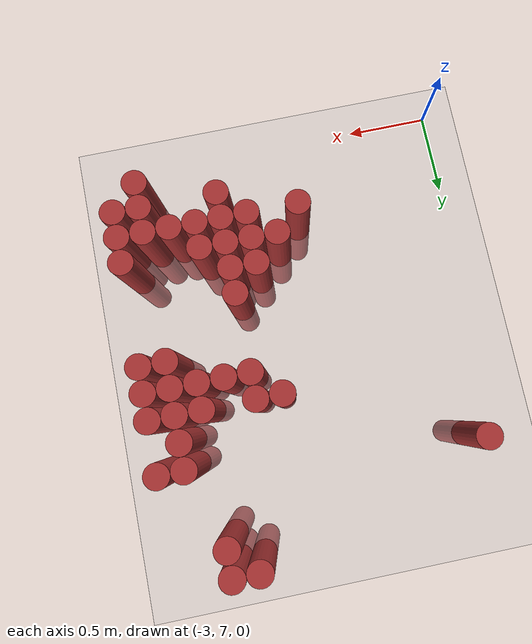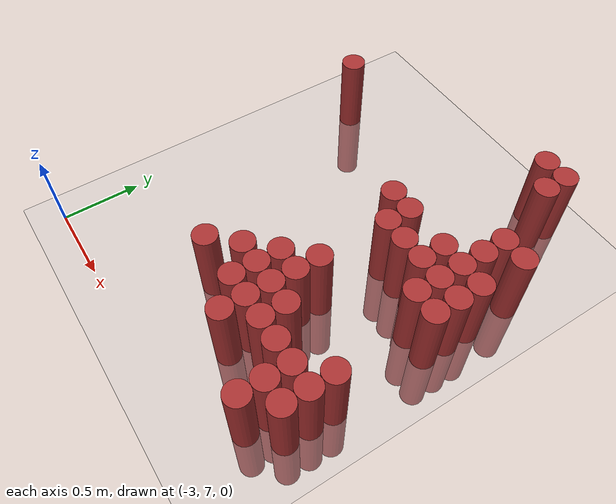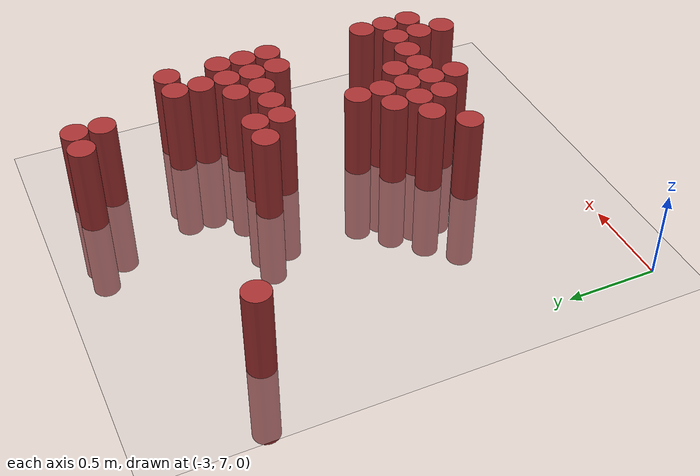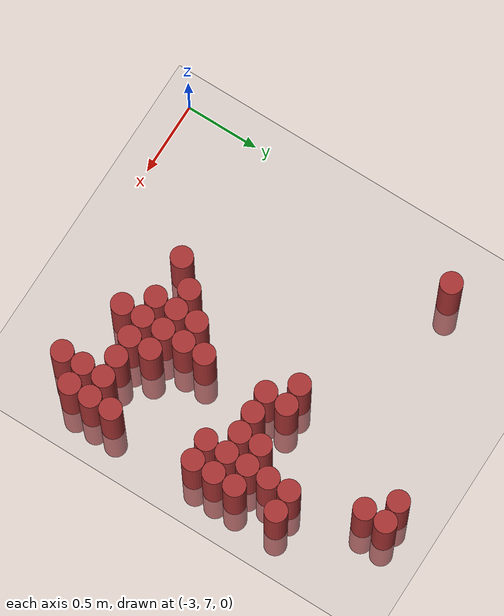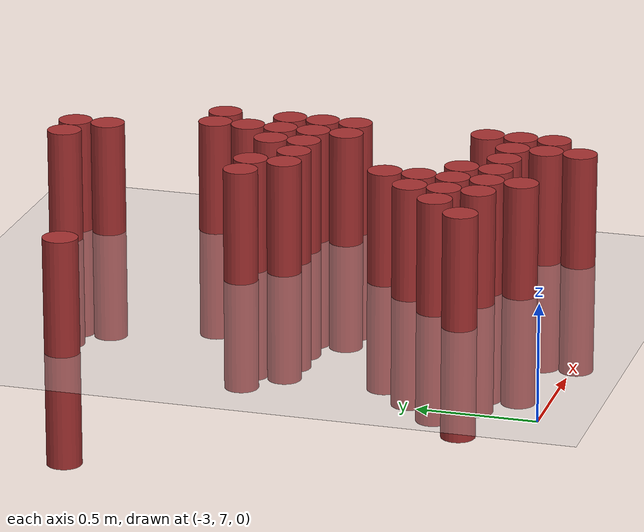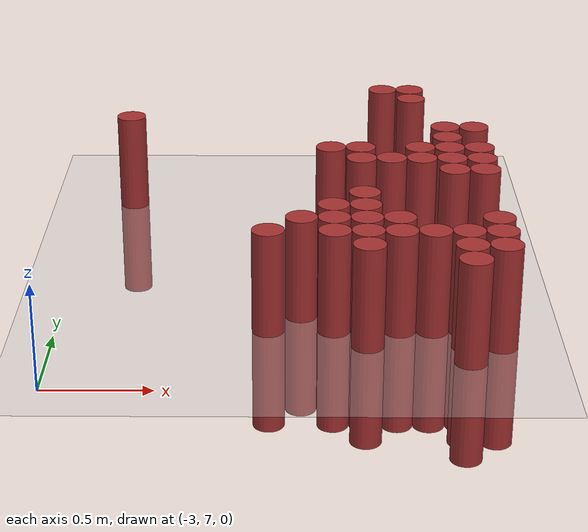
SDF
<sdf version="1.6">
 <world name="default">
  <model name="ground_plane">
   <static>1</static>
   <link name="link">
    <collision name="collision">
     <geometry><plane><normal>0 0 1</normal><size>100 100</size></plane></geometry>
     <surface><friction><ode><mu>100</mu><mu2>50</mu2></ode></friction></surface>
    </collision>
    <visual name="visual">
     <cast_shadows>0</cast_shadows>
     <geometry><plane><normal>0 0 1</normal><size>100 100</size></plane></geometry>
     <material>
      <script><uri>file://media/materials/scripts/gazebo.material</uri><name>Gazebo/Grey</name></script>
     </material>
    </visual>
   </link>
  </model>
  <model name="unit_cylinder_201">
   <static>1</static>
   <pose>-2.775000 9.075000 0.000000 0.000000 0.000000 0.000000</pose>
   <link name="link">
    <inertial>
     <mass>1</mass>
     <inertia><ixx>0.145833</ixx><ixy>0</ixy><ixz>0</ixz><iyy>0.145833</iyy><iyz>0</iyz><izz>0.125</izz></inertia>
    </inertial>
    <collision name="collision">
     <geometry><cylinder><radius>0.075000</radius><length>1</length></cylinder></geometry>
    </collision>
    <visual name="visual">
     <geometry><cylinder><radius>0.075000</radius><length>1</length></cylinder></geometry>
     <material>
      <ambient>0.648000 0.192000 0.192000 1</ambient>
      <diffuse>0.648000 0.192000 0.192000 1</diffuse>
     </material>
     <material>
      <script><name>Gazebo/Grey</name><uri>file://media/materials/scripts/gazebo.material</uri></script>
     </material>
    </visual>
    <sensor name="sensor_contact" type="contact"><contact><collision>collision</collision></contact></sensor>
   </link>
   <plugin filename="gz-sim-touchplugin-system" name="gz::sim::systems::TouchPlugin">
    <target>robot</target>
    <namespace>robot</namespace>
    <time>0.001</time>
    <enabled>true</enabled>
   </plugin>
  </model>
  <model name="unit_cylinder_211">
   <static>1</static>
   <pose>-2.025000 7.575000 0.000000 0.000000 0.000000 0.000000</pose>
   <link name="link">
    <inertial>
     <mass>1</mass>
     <inertia><ixx>0.145833</ixx><ixy>0</ixy><ixz>0</ixz><iyy>0.145833</iyy><iyz>0</iyz><izz>0.125</izz></inertia>
    </inertial>
    <collision name="collision">
     <geometry><cylinder><radius>0.075000</radius><length>1</length></cylinder></geometry>
    </collision>
    <visual name="visual">
     <geometry><cylinder><radius>0.075000</radius><length>1</length></cylinder></geometry>
     <material>
      <ambient>0.648000 0.192000 0.192000 1</ambient>
      <diffuse>0.648000 0.192000 0.192000 1</diffuse>
     </material>
     <material>
      <script><name>Gazebo/Grey</name><uri>file://media/materials/scripts/gazebo.material</uri></script>
     </material>
    </visual>
    <sensor name="sensor_contact" type="contact"><contact><collision>collision</collision></contact></sensor>
   </link>
   <plugin filename="gz-sim-touchplugin-system" name="gz::sim::systems::TouchPlugin">
    <target>robot</target>
    <namespace>robot</namespace>
    <time>0.001</time>
    <enabled>true</enabled>
   </plugin>
  </model>
  <model name="unit_cylinder_214">
   <static>1</static>
   <pose>-1.875000 7.725000 0.000000 0.000000 0.000000 0.000000</pose>
   <link name="link">
    <inertial>
     <mass>1</mass>
     <inertia><ixx>0.145833</ixx><ixy>0</ixy><ixz>0</ixz><iyy>0.145833</iyy><iyz>0</iyz><izz>0.125</izz></inertia>
    </inertial>
    <collision name="collision">
     <geometry><cylinder><radius>0.075000</radius><length>1</length></cylinder></geometry>
    </collision>
    <visual name="visual">
     <geometry><cylinder><radius>0.075000</radius><length>1</length></cylinder></geometry>
     <material>
      <ambient>0.648000 0.192000 0.192000 1</ambient>
      <diffuse>0.648000 0.192000 0.192000 1</diffuse>
     </material>
     <material>
      <script><name>Gazebo/Grey</name><uri>file://media/materials/scripts/gazebo.material</uri></script>
     </material>
    </visual>
    <sensor name="sensor_contact" type="contact"><contact><collision>collision</collision></contact></sensor>
   </link>
   <plugin filename="gz-sim-touchplugin-system" name="gz::sim::systems::TouchPlugin">
    <target>robot</target>
    <namespace>robot</namespace>
    <time>0.001</time>
    <enabled>true</enabled>
   </plugin>
  </model>
  <model name="unit_cylinder_217">
   <static>1</static>
   <pose>-1.725000 7.575000 0.000000 0.000000 0.000000 0.000000</pose>
   <link name="link">
    <inertial>
     <mass>1</mass>
     <inertia><ixx>0.145833</ixx><ixy>0</ixy><ixz>0</ixz><iyy>0.145833</iyy><iyz>0</iyz><izz>0.125</izz></inertia>
    </inertial>
    <collision name="collision">
     <geometry><cylinder><radius>0.075000</radius><length>1</length></cylinder></geometry>
    </collision>
    <visual name="visual">
     <geometry><cylinder><radius>0.075000</radius><length>1</length></cylinder></geometry>
     <material>
      <ambient>0.648000 0.192000 0.192000 1</ambient>
      <diffuse>0.648000 0.192000 0.192000 1</diffuse>
     </material>
     <material>
      <script><name>Gazebo/Grey</name><uri>file://media/materials/scripts/gazebo.material</uri></script>
     </material>
    </visual>
    <sensor name="sensor_contact" type="contact"><contact><collision>collision</collision></contact></sensor>
   </link>
   <plugin filename="gz-sim-touchplugin-system" name="gz::sim::systems::TouchPlugin">
    <target>robot</target>
    <namespace>robot</namespace>
    <time>0.001</time>
    <enabled>true</enabled>
   </plugin>
  </model>
  <model name="unit_cylinder_218">
   <static>1</static>
   <pose>-1.725000 7.725000 0.000000 0.000000 0.000000 0.000000</pose>
   <link name="link">
    <inertial>
     <mass>1</mass>
     <inertia><ixx>0.145833</ixx><ixy>0</ixy><ixz>0</ixz><iyy>0.145833</iyy><iyz>0</iyz><izz>0.125</izz></inertia>
    </inertial>
    <collision name="collision">
     <geometry><cylinder><radius>0.075000</radius><length>1</length></cylinder></geometry>
    </collision>
    <visual name="visual">
     <geometry><cylinder><radius>0.075000</radius><length>1</length></cylinder></geometry>
     <material>
      <ambient>0.648000 0.192000 0.192000 1</ambient>
      <diffuse>0.648000 0.192000 0.192000 1</diffuse>
     </material>
     <material>
      <script><name>Gazebo/Grey</name><uri>file://media/materials/scripts/gazebo.material</uri></script>
     </material>
    </visual>
    <sensor name="sensor_contact" type="contact"><contact><collision>collision</collision></contact></sensor>
   </link>
   <plugin filename="gz-sim-touchplugin-system" name="gz::sim::systems::TouchPlugin">
    <target>robot</target>
    <namespace>robot</namespace>
    <time>0.001</time>
    <enabled>true</enabled>
   </plugin>
  </model>
  <model name="unit_cylinder_219">
   <static>1</static>
   <pose>-1.725000 7.875000 0.000000 0.000000 0.000000 0.000000</pose>
   <link name="link">
    <inertial>
     <mass>1</mass>
     <inertia><ixx>0.145833</ixx><ixy>0</ixy><ixz>0</ixz><iyy>0.145833</iyy><iyz>0</iyz><izz>0.125</izz></inertia>
    </inertial>
    <collision name="collision">
     <geometry><cylinder><radius>0.075000</radius><length>1</length></cylinder></geometry>
    </collision>
    <visual name="visual">
     <geometry><cylinder><radius>0.075000</radius><length>1</length></cylinder></geometry>
     <material>
      <ambient>0.648000 0.192000 0.192000 1</ambient>
      <diffuse>0.648000 0.192000 0.192000 1</diffuse>
     </material>
     <material>
      <script><name>Gazebo/Grey</name><uri>file://media/materials/scripts/gazebo.material</uri></script>
     </material>
    </visual>
    <sensor name="sensor_contact" type="contact"><contact><collision>collision</collision></contact></sensor>
   </link>
   <plugin filename="gz-sim-touchplugin-system" name="gz::sim::systems::TouchPlugin">
    <target>robot</target>
    <namespace>robot</namespace>
    <time>0.001</time>
    <enabled>true</enabled>
   </plugin>
  </model>
  <model name="unit_cylinder_220">
   <static>1</static>
   <pose>-1.725000 8.625000 0.000000 0.000000 0.000000 0.000000</pose>
   <link name="link">
    <inertial>
     <mass>1</mass>
     <inertia><ixx>0.145833</ixx><ixy>0</ixy><ixz>0</ixz><iyy>0.145833</iyy><iyz>0</iyz><izz>0.125</izz></inertia>
    </inertial>
    <collision name="collision">
     <geometry><cylinder><radius>0.075000</radius><length>1</length></cylinder></geometry>
    </collision>
    <visual name="visual">
     <geometry><cylinder><radius>0.075000</radius><length>1</length></cylinder></geometry>
     <material>
      <ambient>0.648000 0.192000 0.192000 1</ambient>
      <diffuse>0.648000 0.192000 0.192000 1</diffuse>
     </material>
     <material>
      <script><name>Gazebo/Grey</name><uri>file://media/materials/scripts/gazebo.material</uri></script>
     </material>
    </visual>
    <sensor name="sensor_contact" type="contact"><contact><collision>collision</collision></contact></sensor>
   </link>
   <plugin filename="gz-sim-touchplugin-system" name="gz::sim::systems::TouchPlugin">
    <target>robot</target>
    <namespace>robot</namespace>
    <time>0.001</time>
    <enabled>true</enabled>
   </plugin>
  </model>
  <model name="unit_cylinder_225">
   <static>1</static>
   <pose>-1.575000 7.425000 0.000000 0.000000 0.000000 0.000000</pose>
   <link name="link">
    <inertial>
     <mass>1</mass>
     <inertia><ixx>0.145833</ixx><ixy>0</ixy><ixz>0</ixz><iyy>0.145833</iyy><iyz>0</iyz><izz>0.125</izz></inertia>
    </inertial>
    <collision name="collision">
     <geometry><cylinder><radius>0.075000</radius><length>1</length></cylinder></geometry>
    </collision>
    <visual name="visual">
     <geometry><cylinder><radius>0.075000</radius><length>1</length></cylinder></geometry>
     <material>
      <ambient>0.648000 0.192000 0.192000 1</ambient>
      <diffuse>0.648000 0.192000 0.192000 1</diffuse>
     </material>
     <material>
      <script><name>Gazebo/Grey</name><uri>file://media/materials/scripts/gazebo.material</uri></script>
     </material>
    </visual>
    <sensor name="sensor_contact" type="contact"><contact><collision>collision</collision></contact></sensor>
   </link>
   <plugin filename="gz-sim-touchplugin-system" name="gz::sim::systems::TouchPlugin">
    <target>robot</target>
    <namespace>robot</namespace>
    <time>0.001</time>
    <enabled>true</enabled>
   </plugin>
  </model>
  <model name="unit_cylinder_226">
   <static>1</static>
   <pose>-1.575000 7.575000 0.000000 0.000000 0.000000 0.000000</pose>
   <link name="link">
    <inertial>
     <mass>1</mass>
     <inertia><ixx>0.145833</ixx><ixy>0</ixy><ixz>0</ixz><iyy>0.145833</iyy><iyz>0</iyz><izz>0.125</izz></inertia>
    </inertial>
    <collision name="collision">
     <geometry><cylinder><radius>0.075000</radius><length>1</length></cylinder></geometry>
    </collision>
    <visual name="visual">
     <geometry><cylinder><radius>0.075000</radius><length>1</length></cylinder></geometry>
     <material>
      <ambient>0.648000 0.192000 0.192000 1</ambient>
      <diffuse>0.648000 0.192000 0.192000 1</diffuse>
     </material>
     <material>
      <script><name>Gazebo/Grey</name><uri>file://media/materials/scripts/gazebo.material</uri></script>
     </material>
    </visual>
    <sensor name="sensor_contact" type="contact"><contact><collision>collision</collision></contact></sensor>
   </link>
   <plugin filename="gz-sim-touchplugin-system" name="gz::sim::systems::TouchPlugin">
    <target>robot</target>
    <namespace>robot</namespace>
    <time>0.001</time>
    <enabled>true</enabled>
   </plugin>
  </model>
  <model name="unit_cylinder_227">
   <static>1</static>
   <pose>-1.575000 7.725000 0.000000 0.000000 0.000000 0.000000</pose>
   <link name="link">
    <inertial>
     <mass>1</mass>
     <inertia><ixx>0.145833</ixx><ixy>0</ixy><ixz>0</ixz><iyy>0.145833</iyy><iyz>0</iyz><izz>0.125</izz></inertia>
    </inertial>
    <collision name="collision">
     <geometry><cylinder><radius>0.075000</radius><length>1</length></cylinder></geometry>
    </collision>
    <visual name="visual">
     <geometry><cylinder><radius>0.075000</radius><length>1</length></cylinder></geometry>
     <material>
      <ambient>0.648000 0.192000 0.192000 1</ambient>
      <diffuse>0.648000 0.192000 0.192000 1</diffuse>
     </material>
     <material>
      <script><name>Gazebo/Grey</name><uri>file://media/materials/scripts/gazebo.material</uri></script>
     </material>
    </visual>
    <sensor name="sensor_contact" type="contact"><contact><collision>collision</collision></contact></sensor>
   </link>
   <plugin filename="gz-sim-touchplugin-system" name="gz::sim::systems::TouchPlugin">
    <target>robot</target>
    <namespace>robot</namespace>
    <time>0.001</time>
    <enabled>true</enabled>
   </plugin>
  </model>
  <model name="unit_cylinder_228">
   <static>1</static>
   <pose>-1.575000 7.875000 0.000000 0.000000 0.000000 0.000000</pose>
   <link name="link">
    <inertial>
     <mass>1</mass>
     <inertia><ixx>0.145833</ixx><ixy>0</ixy><ixz>0</ixz><iyy>0.145833</iyy><iyz>0</iyz><izz>0.125</izz></inertia>
    </inertial>
    <collision name="collision">
     <geometry><cylinder><radius>0.075000</radius><length>1</length></cylinder></geometry>
    </collision>
    <visual name="visual">
     <geometry><cylinder><radius>0.075000</radius><length>1</length></cylinder></geometry>
     <material>
      <ambient>0.648000 0.192000 0.192000 1</ambient>
      <diffuse>0.648000 0.192000 0.192000 1</diffuse>
     </material>
     <material>
      <script><name>Gazebo/Grey</name><uri>file://media/materials/scripts/gazebo.material</uri></script>
     </material>
    </visual>
    <sensor name="sensor_contact" type="contact"><contact><collision>collision</collision></contact></sensor>
   </link>
   <plugin filename="gz-sim-touchplugin-system" name="gz::sim::systems::TouchPlugin">
    <target>robot</target>
    <namespace>robot</namespace>
    <time>0.001</time>
    <enabled>true</enabled>
   </plugin>
  </model>
  <model name="unit_cylinder_229">
   <static>1</static>
   <pose>-1.575000 8.025000 0.000000 0.000000 0.000000 0.000000</pose>
   <link name="link">
    <inertial>
     <mass>1</mass>
     <inertia><ixx>0.145833</ixx><ixy>0</ixy><ixz>0</ixz><iyy>0.145833</iyy><iyz>0</iyz><izz>0.125</izz></inertia>
    </inertial>
    <collision name="collision">
     <geometry><cylinder><radius>0.075000</radius><length>1</length></cylinder></geometry>
    </collision>
    <visual name="visual">
     <geometry><cylinder><radius>0.075000</radius><length>1</length></cylinder></geometry>
     <material>
      <ambient>0.648000 0.192000 0.192000 1</ambient>
      <diffuse>0.648000 0.192000 0.192000 1</diffuse>
     </material>
     <material>
      <script><name>Gazebo/Grey</name><uri>file://media/materials/scripts/gazebo.material</uri></script>
     </material>
    </visual>
    <sensor name="sensor_contact" type="contact"><contact><collision>collision</collision></contact></sensor>
   </link>
   <plugin filename="gz-sim-touchplugin-system" name="gz::sim::systems::TouchPlugin">
    <target>robot</target>
    <namespace>robot</namespace>
    <time>0.001</time>
    <enabled>true</enabled>
   </plugin>
  </model>
  <model name="unit_cylinder_230">
   <static>1</static>
   <pose>-1.575000 8.475000 0.000000 0.000000 0.000000 0.000000</pose>
   <link name="link">
    <inertial>
     <mass>1</mass>
     <inertia><ixx>0.145833</ixx><ixy>0</ixy><ixz>0</ixz><iyy>0.145833</iyy><iyz>0</iyz><izz>0.125</izz></inertia>
    </inertial>
    <collision name="collision">
     <geometry><cylinder><radius>0.075000</radius><length>1</length></cylinder></geometry>
    </collision>
    <visual name="visual">
     <geometry><cylinder><radius>0.075000</radius><length>1</length></cylinder></geometry>
     <material>
      <ambient>0.648000 0.192000 0.192000 1</ambient>
      <diffuse>0.648000 0.192000 0.192000 1</diffuse>
     </material>
     <material>
      <script><name>Gazebo/Grey</name><uri>file://media/materials/scripts/gazebo.material</uri></script>
     </material>
    </visual>
    <sensor name="sensor_contact" type="contact"><contact><collision>collision</collision></contact></sensor>
   </link>
   <plugin filename="gz-sim-touchplugin-system" name="gz::sim::systems::TouchPlugin">
    <target>robot</target>
    <namespace>robot</namespace>
    <time>0.001</time>
    <enabled>true</enabled>
   </plugin>
  </model>
  <model name="unit_cylinder_231">
   <static>1</static>
   <pose>-1.575000 8.625000 0.000000 0.000000 0.000000 0.000000</pose>
   <link name="link">
    <inertial>
     <mass>1</mass>
     <inertia><ixx>0.145833</ixx><ixy>0</ixy><ixz>0</ixz><iyy>0.145833</iyy><iyz>0</iyz><izz>0.125</izz></inertia>
    </inertial>
    <collision name="collision">
     <geometry><cylinder><radius>0.075000</radius><length>1</length></cylinder></geometry>
    </collision>
    <visual name="visual">
     <geometry><cylinder><radius>0.075000</radius><length>1</length></cylinder></geometry>
     <material>
      <ambient>0.648000 0.192000 0.192000 1</ambient>
      <diffuse>0.648000 0.192000 0.192000 1</diffuse>
     </material>
     <material>
      <script><name>Gazebo/Grey</name><uri>file://media/materials/scripts/gazebo.material</uri></script>
     </material>
    </visual>
    <sensor name="sensor_contact" type="contact"><contact><collision>collision</collision></contact></sensor>
   </link>
   <plugin filename="gz-sim-touchplugin-system" name="gz::sim::systems::TouchPlugin">
    <target>robot</target>
    <namespace>robot</namespace>
    <time>0.001</time>
    <enabled>true</enabled>
   </plugin>
  </model>
  <model name="unit_cylinder_234">
   <static>1</static>
   <pose>-1.425000 7.575000 0.000000 0.000000 0.000000 0.000000</pose>
   <link name="link">
    <inertial>
     <mass>1</mass>
     <inertia><ixx>0.145833</ixx><ixy>0</ixy><ixz>0</ixz><iyy>0.145833</iyy><iyz>0</iyz><izz>0.125</izz></inertia>
    </inertial>
    <collision name="collision">
     <geometry><cylinder><radius>0.075000</radius><length>1</length></cylinder></geometry>
    </collision>
    <visual name="visual">
     <geometry><cylinder><radius>0.075000</radius><length>1</length></cylinder></geometry>
     <material>
      <ambient>0.648000 0.192000 0.192000 1</ambient>
      <diffuse>0.648000 0.192000 0.192000 1</diffuse>
     </material>
     <material>
      <script><name>Gazebo/Grey</name><uri>file://media/materials/scripts/gazebo.material</uri></script>
     </material>
    </visual>
    <sensor name="sensor_contact" type="contact"><contact><collision>collision</collision></contact></sensor>
   </link>
   <plugin filename="gz-sim-touchplugin-system" name="gz::sim::systems::TouchPlugin">
    <target>robot</target>
    <namespace>robot</namespace>
    <time>0.001</time>
    <enabled>true</enabled>
   </plugin>
  </model>
  <model name="unit_cylinder_235">
   <static>1</static>
   <pose>-1.425000 7.725000 0.000000 0.000000 0.000000 0.000000</pose>
   <link name="link">
    <inertial>
     <mass>1</mass>
     <inertia><ixx>0.145833</ixx><ixy>0</ixy><ixz>0</ixz><iyy>0.145833</iyy><iyz>0</iyz><izz>0.125</izz></inertia>
    </inertial>
    <collision name="collision">
     <geometry><cylinder><radius>0.075000</radius><length>1</length></cylinder></geometry>
    </collision>
    <visual name="visual">
     <geometry><cylinder><radius>0.075000</radius><length>1</length></cylinder></geometry>
     <material>
      <ambient>0.648000 0.192000 0.192000 1</ambient>
      <diffuse>0.648000 0.192000 0.192000 1</diffuse>
     </material>
     <material>
      <script><name>Gazebo/Grey</name><uri>file://media/materials/scripts/gazebo.material</uri></script>
     </material>
    </visual>
    <sensor name="sensor_contact" type="contact"><contact><collision>collision</collision></contact></sensor>
   </link>
   <plugin filename="gz-sim-touchplugin-system" name="gz::sim::systems::TouchPlugin">
    <target>robot</target>
    <namespace>robot</namespace>
    <time>0.001</time>
    <enabled>true</enabled>
   </plugin>
  </model>
  <model name="unit_cylinder_236">
   <static>1</static>
   <pose>-1.425000 8.475000 0.000000 0.000000 0.000000 0.000000</pose>
   <link name="link">
    <inertial>
     <mass>1</mass>
     <inertia><ixx>0.145833</ixx><ixy>0</ixy><ixz>0</ixz><iyy>0.145833</iyy><iyz>0</iyz><izz>0.125</izz></inertia>
    </inertial>
    <collision name="collision">
     <geometry><cylinder><radius>0.075000</radius><length>1</length></cylinder></geometry>
    </collision>
    <visual name="visual">
     <geometry><cylinder><radius>0.075000</radius><length>1</length></cylinder></geometry>
     <material>
      <ambient>0.648000 0.192000 0.192000 1</ambient>
      <diffuse>0.648000 0.192000 0.192000 1</diffuse>
     </material>
     <material>
      <script><name>Gazebo/Grey</name><uri>file://media/materials/scripts/gazebo.material</uri></script>
     </material>
    </visual>
    <sensor name="sensor_contact" type="contact"><contact><collision>collision</collision></contact></sensor>
   </link>
   <plugin filename="gz-sim-touchplugin-system" name="gz::sim::systems::TouchPlugin">
    <target>robot</target>
    <namespace>robot</namespace>
    <time>0.001</time>
    <enabled>true</enabled>
   </plugin>
  </model>
  <model name="unit_cylinder_237">
   <static>1</static>
   <pose>-1.425000 9.525000 0.000000 0.000000 0.000000 0.000000</pose>
   <link name="link">
    <inertial>
     <mass>1</mass>
     <inertia><ixx>0.145833</ixx><ixy>0</ixy><ixz>0</ixz><iyy>0.145833</iyy><iyz>0</iyz><izz>0.125</izz></inertia>
    </inertial>
    <collision name="collision">
     <geometry><cylinder><radius>0.075000</radius><length>1</length></cylinder></geometry>
    </collision>
    <visual name="visual">
     <geometry><cylinder><radius>0.075000</radius><length>1</length></cylinder></geometry>
     <material>
      <ambient>0.648000 0.192000 0.192000 1</ambient>
      <diffuse>0.648000 0.192000 0.192000 1</diffuse>
     </material>
     <material>
      <script><name>Gazebo/Grey</name><uri>file://media/materials/scripts/gazebo.material</uri></script>
     </material>
    </visual>
    <sensor name="sensor_contact" type="contact"><contact><collision>collision</collision></contact></sensor>
   </link>
   <plugin filename="gz-sim-touchplugin-system" name="gz::sim::systems::TouchPlugin">
    <target>robot</target>
    <namespace>robot</namespace>
    <time>0.001</time>
    <enabled>true</enabled>
   </plugin>
  </model>
  <model name="unit_cylinder_241">
   <static>1</static>
   <pose>-1.275000 7.575000 0.000000 0.000000 0.000000 0.000000</pose>
   <link name="link">
    <inertial>
     <mass>1</mass>
     <inertia><ixx>0.145833</ixx><ixy>0</ixy><ixz>0</ixz><iyy>0.145833</iyy><iyz>0</iyz><izz>0.125</izz></inertia>
    </inertial>
    <collision name="collision">
     <geometry><cylinder><radius>0.075000</radius><length>1</length></cylinder></geometry>
    </collision>
    <visual name="visual">
     <geometry><cylinder><radius>0.075000</radius><length>1</length></cylinder></geometry>
     <material>
      <ambient>0.648000 0.192000 0.192000 1</ambient>
      <diffuse>0.648000 0.192000 0.192000 1</diffuse>
     </material>
     <material>
      <script><name>Gazebo/Grey</name><uri>file://media/materials/scripts/gazebo.material</uri></script>
     </material>
    </visual>
    <sensor name="sensor_contact" type="contact"><contact><collision>collision</collision></contact></sensor>
   </link>
   <plugin filename="gz-sim-touchplugin-system" name="gz::sim::systems::TouchPlugin">
    <target>robot</target>
    <namespace>robot</namespace>
    <time>0.001</time>
    <enabled>true</enabled>
   </plugin>
  </model>
  <model name="unit_cylinder_242">
   <static>1</static>
   <pose>-1.275000 8.475000 0.000000 0.000000 0.000000 0.000000</pose>
   <link name="link">
    <inertial>
     <mass>1</mass>
     <inertia><ixx>0.145833</ixx><ixy>0</ixy><ixz>0</ixz><iyy>0.145833</iyy><iyz>0</iyz><izz>0.125</izz></inertia>
    </inertial>
    <collision name="collision">
     <geometry><cylinder><radius>0.075000</radius><length>1</length></cylinder></geometry>
    </collision>
    <visual name="visual">
     <geometry><cylinder><radius>0.075000</radius><length>1</length></cylinder></geometry>
     <material>
      <ambient>0.648000 0.192000 0.192000 1</ambient>
      <diffuse>0.648000 0.192000 0.192000 1</diffuse>
     </material>
     <material>
      <script><name>Gazebo/Grey</name><uri>file://media/materials/scripts/gazebo.material</uri></script>
     </material>
    </visual>
    <sensor name="sensor_contact" type="contact"><contact><collision>collision</collision></contact></sensor>
   </link>
   <plugin filename="gz-sim-touchplugin-system" name="gz::sim::systems::TouchPlugin">
    <target>robot</target>
    <namespace>robot</namespace>
    <time>0.001</time>
    <enabled>true</enabled>
   </plugin>
  </model>
  <model name="unit_cylinder_243">
   <static>1</static>
   <pose>-1.275000 8.625000 0.000000 0.000000 0.000000 0.000000</pose>
   <link name="link">
    <inertial>
     <mass>1</mass>
     <inertia><ixx>0.145833</ixx><ixy>0</ixy><ixz>0</ixz><iyy>0.145833</iyy><iyz>0</iyz><izz>0.125</izz></inertia>
    </inertial>
    <collision name="collision">
     <geometry><cylinder><radius>0.075000</radius><length>1</length></cylinder></geometry>
    </collision>
    <visual name="visual">
     <geometry><cylinder><radius>0.075000</radius><length>1</length></cylinder></geometry>
     <material>
      <ambient>0.648000 0.192000 0.192000 1</ambient>
      <diffuse>0.648000 0.192000 0.192000 1</diffuse>
     </material>
     <material>
      <script><name>Gazebo/Grey</name><uri>file://media/materials/scripts/gazebo.material</uri></script>
     </material>
    </visual>
    <sensor name="sensor_contact" type="contact"><contact><collision>collision</collision></contact></sensor>
   </link>
   <plugin filename="gz-sim-touchplugin-system" name="gz::sim::systems::TouchPlugin">
    <target>robot</target>
    <namespace>robot</namespace>
    <time>0.001</time>
    <enabled>true</enabled>
   </plugin>
  </model>
  <model name="unit_cylinder_244">
   <static>1</static>
   <pose>-1.275000 9.375000 0.000000 0.000000 0.000000 0.000000</pose>
   <link name="link">
    <inertial>
     <mass>1</mass>
     <inertia><ixx>0.145833</ixx><ixy>0</ixy><ixz>0</ixz><iyy>0.145833</iyy><iyz>0</iyz><izz>0.125</izz></inertia>
    </inertial>
    <collision name="collision">
     <geometry><cylinder><radius>0.075000</radius><length>1</length></cylinder></geometry>
    </collision>
    <visual name="visual">
     <geometry><cylinder><radius>0.075000</radius><length>1</length></cylinder></geometry>
     <material>
      <ambient>0.648000 0.192000 0.192000 1</ambient>
      <diffuse>0.648000 0.192000 0.192000 1</diffuse>
     </material>
     <material>
      <script><name>Gazebo/Grey</name><uri>file://media/materials/scripts/gazebo.material</uri></script>
     </material>
    </visual>
    <sensor name="sensor_contact" type="contact"><contact><collision>collision</collision></contact></sensor>
   </link>
   <plugin filename="gz-sim-touchplugin-system" name="gz::sim::systems::TouchPlugin">
    <target>robot</target>
    <namespace>robot</namespace>
    <time>0.001</time>
    <enabled>true</enabled>
   </plugin>
  </model>
  <model name="unit_cylinder_245">
   <static>1</static>
   <pose>-1.275000 9.525000 0.000000 0.000000 0.000000 0.000000</pose>
   <link name="link">
    <inertial>
     <mass>1</mass>
     <inertia><ixx>0.145833</ixx><ixy>0</ixy><ixz>0</ixz><iyy>0.145833</iyy><iyz>0</iyz><izz>0.125</izz></inertia>
    </inertial>
    <collision name="collision">
     <geometry><cylinder><radius>0.075000</radius><length>1</length></cylinder></geometry>
    </collision>
    <visual name="visual">
     <geometry><cylinder><radius>0.075000</radius><length>1</length></cylinder></geometry>
     <material>
      <ambient>0.648000 0.192000 0.192000 1</ambient>
      <diffuse>0.648000 0.192000 0.192000 1</diffuse>
     </material>
     <material>
      <script><name>Gazebo/Grey</name><uri>file://media/materials/scripts/gazebo.material</uri></script>
     </material>
    </visual>
    <sensor name="sensor_contact" type="contact"><contact><collision>collision</collision></contact></sensor>
   </link>
   <plugin filename="gz-sim-touchplugin-system" name="gz::sim::systems::TouchPlugin">
    <target>robot</target>
    <namespace>robot</namespace>
    <time>0.001</time>
    <enabled>true</enabled>
   </plugin>
  </model>
  <model name="unit_cylinder_249">
   <static>1</static>
   <pose>-1.125000 7.275000 0.000000 0.000000 0.000000 0.000000</pose>
   <link name="link">
    <inertial>
     <mass>1</mass>
     <inertia><ixx>0.145833</ixx><ixy>0</ixy><ixz>0</ixz><iyy>0.145833</iyy><iyz>0</iyz><izz>0.125</izz></inertia>
    </inertial>
    <collision name="collision">
     <geometry><cylinder><radius>0.075000</radius><length>1</length></cylinder></geometry>
    </collision>
    <visual name="visual">
     <geometry><cylinder><radius>0.075000</radius><length>1</length></cylinder></geometry>
     <material>
      <ambient>0.648000 0.192000 0.192000 1</ambient>
      <diffuse>0.648000 0.192000 0.192000 1</diffuse>
     </material>
     <material>
      <script><name>Gazebo/Grey</name><uri>file://media/materials/scripts/gazebo.material</uri></script>
     </material>
    </visual>
    <sensor name="sensor_contact" type="contact"><contact><collision>collision</collision></contact></sensor>
   </link>
   <plugin filename="gz-sim-touchplugin-system" name="gz::sim::systems::TouchPlugin">
    <target>robot</target>
    <namespace>robot</namespace>
    <time>0.001</time>
    <enabled>true</enabled>
   </plugin>
  </model>
  <model name="unit_cylinder_250">
   <static>1</static>
   <pose>-1.125000 7.425000 0.000000 0.000000 0.000000 0.000000</pose>
   <link name="link">
    <inertial>
     <mass>1</mass>
     <inertia><ixx>0.145833</ixx><ixy>0</ixy><ixz>0</ixz><iyy>0.145833</iyy><iyz>0</iyz><izz>0.125</izz></inertia>
    </inertial>
    <collision name="collision">
     <geometry><cylinder><radius>0.075000</radius><length>1</length></cylinder></geometry>
    </collision>
    <visual name="visual">
     <geometry><cylinder><radius>0.075000</radius><length>1</length></cylinder></geometry>
     <material>
      <ambient>0.648000 0.192000 0.192000 1</ambient>
      <diffuse>0.648000 0.192000 0.192000 1</diffuse>
     </material>
     <material>
      <script><name>Gazebo/Grey</name><uri>file://media/materials/scripts/gazebo.material</uri></script>
     </material>
    </visual>
    <sensor name="sensor_contact" type="contact"><contact><collision>collision</collision></contact></sensor>
   </link>
   <plugin filename="gz-sim-touchplugin-system" name="gz::sim::systems::TouchPlugin">
    <target>robot</target>
    <namespace>robot</namespace>
    <time>0.001</time>
    <enabled>true</enabled>
   </plugin>
  </model>
  <model name="unit_cylinder_251">
   <static>1</static>
   <pose>-1.125000 7.575000 0.000000 0.000000 0.000000 0.000000</pose>
   <link name="link">
    <inertial>
     <mass>1</mass>
     <inertia><ixx>0.145833</ixx><ixy>0</ixy><ixz>0</ixz><iyy>0.145833</iyy><iyz>0</iyz><izz>0.125</izz></inertia>
    </inertial>
    <collision name="collision">
     <geometry><cylinder><radius>0.075000</radius><length>1</length></cylinder></geometry>
    </collision>
    <visual name="visual">
     <geometry><cylinder><radius>0.075000</radius><length>1</length></cylinder></geometry>
     <material>
      <ambient>0.648000 0.192000 0.192000 1</ambient>
      <diffuse>0.648000 0.192000 0.192000 1</diffuse>
     </material>
     <material>
      <script><name>Gazebo/Grey</name><uri>file://media/materials/scripts/gazebo.material</uri></script>
     </material>
    </visual>
    <sensor name="sensor_contact" type="contact"><contact><collision>collision</collision></contact></sensor>
   </link>
   <plugin filename="gz-sim-touchplugin-system" name="gz::sim::systems::TouchPlugin">
    <target>robot</target>
    <namespace>robot</namespace>
    <time>0.001</time>
    <enabled>true</enabled>
   </plugin>
  </model>
  <model name="unit_cylinder_252">
   <static>1</static>
   <pose>-1.125000 8.325000 0.000000 0.000000 0.000000 0.000000</pose>
   <link name="link">
    <inertial>
     <mass>1</mass>
     <inertia><ixx>0.145833</ixx><ixy>0</ixy><ixz>0</ixz><iyy>0.145833</iyy><iyz>0</iyz><izz>0.125</izz></inertia>
    </inertial>
    <collision name="collision">
     <geometry><cylinder><radius>0.075000</radius><length>1</length></cylinder></geometry>
    </collision>
    <visual name="visual">
     <geometry><cylinder><radius>0.075000</radius><length>1</length></cylinder></geometry>
     <material>
      <ambient>0.648000 0.192000 0.192000 1</ambient>
      <diffuse>0.648000 0.192000 0.192000 1</diffuse>
     </material>
     <material>
      <script><name>Gazebo/Grey</name><uri>file://media/materials/scripts/gazebo.material</uri></script>
     </material>
    </visual>
    <sensor name="sensor_contact" type="contact"><contact><collision>collision</collision></contact></sensor>
   </link>
   <plugin filename="gz-sim-touchplugin-system" name="gz::sim::systems::TouchPlugin">
    <target>robot</target>
    <namespace>robot</namespace>
    <time>0.001</time>
    <enabled>true</enabled>
   </plugin>
  </model>
  <model name="unit_cylinder_253">
   <static>1</static>
   <pose>-1.125000 8.475000 0.000000 0.000000 0.000000 0.000000</pose>
   <link name="link">
    <inertial>
     <mass>1</mass>
     <inertia><ixx>0.145833</ixx><ixy>0</ixy><ixz>0</ixz><iyy>0.145833</iyy><iyz>0</iyz><izz>0.125</izz></inertia>
    </inertial>
    <collision name="collision">
     <geometry><cylinder><radius>0.075000</radius><length>1</length></cylinder></geometry>
    </collision>
    <visual name="visual">
     <geometry><cylinder><radius>0.075000</radius><length>1</length></cylinder></geometry>
     <material>
      <ambient>0.648000 0.192000 0.192000 1</ambient>
      <diffuse>0.648000 0.192000 0.192000 1</diffuse>
     </material>
     <material>
      <script><name>Gazebo/Grey</name><uri>file://media/materials/scripts/gazebo.material</uri></script>
     </material>
    </visual>
    <sensor name="sensor_contact" type="contact"><contact><collision>collision</collision></contact></sensor>
   </link>
   <plugin filename="gz-sim-touchplugin-system" name="gz::sim::systems::TouchPlugin">
    <target>robot</target>
    <namespace>robot</namespace>
    <time>0.001</time>
    <enabled>true</enabled>
   </plugin>
  </model>
  <model name="unit_cylinder_254">
   <static>1</static>
   <pose>-1.125000 8.625000 0.000000 0.000000 0.000000 0.000000</pose>
   <link name="link">
    <inertial>
     <mass>1</mass>
     <inertia><ixx>0.145833</ixx><ixy>0</ixy><ixz>0</ixz><iyy>0.145833</iyy><iyz>0</iyz><izz>0.125</izz></inertia>
    </inertial>
    <collision name="collision">
     <geometry><cylinder><radius>0.075000</radius><length>1</length></cylinder></geometry>
    </collision>
    <visual name="visual">
     <geometry><cylinder><radius>0.075000</radius><length>1</length></cylinder></geometry>
     <material>
      <ambient>0.648000 0.192000 0.192000 1</ambient>
      <diffuse>0.648000 0.192000 0.192000 1</diffuse>
     </material>
     <material>
      <script><name>Gazebo/Grey</name><uri>file://media/materials/scripts/gazebo.material</uri></script>
     </material>
    </visual>
    <sensor name="sensor_contact" type="contact"><contact><collision>collision</collision></contact></sensor>
   </link>
   <plugin filename="gz-sim-touchplugin-system" name="gz::sim::systems::TouchPlugin">
    <target>robot</target>
    <namespace>robot</namespace>
    <time>0.001</time>
    <enabled>true</enabled>
   </plugin>
  </model>
  <model name="unit_cylinder_255">
   <static>1</static>
   <pose>-1.125000 8.775000 0.000000 0.000000 0.000000 0.000000</pose>
   <link name="link">
    <inertial>
     <mass>1</mass>
     <inertia><ixx>0.145833</ixx><ixy>0</ixy><ixz>0</ixz><iyy>0.145833</iyy><iyz>0</iyz><izz>0.125</izz></inertia>
    </inertial>
    <collision name="collision">
     <geometry><cylinder><radius>0.075000</radius><length>1</length></cylinder></geometry>
    </collision>
    <visual name="visual">
     <geometry><cylinder><radius>0.075000</radius><length>1</length></cylinder></geometry>
     <material>
      <ambient>0.648000 0.192000 0.192000 1</ambient>
      <diffuse>0.648000 0.192000 0.192000 1</diffuse>
     </material>
     <material>
      <script><name>Gazebo/Grey</name><uri>file://media/materials/scripts/gazebo.material</uri></script>
     </material>
    </visual>
    <sensor name="sensor_contact" type="contact"><contact><collision>collision</collision></contact></sensor>
   </link>
   <plugin filename="gz-sim-touchplugin-system" name="gz::sim::systems::TouchPlugin">
    <target>robot</target>
    <namespace>robot</namespace>
    <time>0.001</time>
    <enabled>true</enabled>
   </plugin>
  </model>
  <model name="unit_cylinder_256">
   <static>1</static>
   <pose>-1.125000 8.925000 0.000000 0.000000 0.000000 0.000000</pose>
   <link name="link">
    <inertial>
     <mass>1</mass>
     <inertia><ixx>0.145833</ixx><ixy>0</ixy><ixz>0</ixz><iyy>0.145833</iyy><iyz>0</iyz><izz>0.125</izz></inertia>
    </inertial>
    <collision name="collision">
     <geometry><cylinder><radius>0.075000</radius><length>1</length></cylinder></geometry>
    </collision>
    <visual name="visual">
     <geometry><cylinder><radius>0.075000</radius><length>1</length></cylinder></geometry>
     <material>
      <ambient>0.648000 0.192000 0.192000 1</ambient>
      <diffuse>0.648000 0.192000 0.192000 1</diffuse>
     </material>
     <material>
      <script><name>Gazebo/Grey</name><uri>file://media/materials/scripts/gazebo.material</uri></script>
     </material>
    </visual>
    <sensor name="sensor_contact" type="contact"><contact><collision>collision</collision></contact></sensor>
   </link>
   <plugin filename="gz-sim-touchplugin-system" name="gz::sim::systems::TouchPlugin">
    <target>robot</target>
    <namespace>robot</namespace>
    <time>0.001</time>
    <enabled>true</enabled>
   </plugin>
  </model>
  <model name="unit_cylinder_264">
   <static>1</static>
   <pose>-0.975000 7.425000 0.000000 0.000000 0.000000 0.000000</pose>
   <link name="link">
    <inertial>
     <mass>1</mass>
     <inertia><ixx>0.145833</ixx><ixy>0</ixy><ixz>0</ixz><iyy>0.145833</iyy><iyz>0</iyz><izz>0.125</izz></inertia>
    </inertial>
    <collision name="collision">
     <geometry><cylinder><radius>0.075000</radius><length>1</length></cylinder></geometry>
    </collision>
    <visual name="visual">
     <geometry><cylinder><radius>0.075000</radius><length>1</length></cylinder></geometry>
     <material>
      <ambient>0.648000 0.192000 0.192000 1</ambient>
      <diffuse>0.648000 0.192000 0.192000 1</diffuse>
     </material>
     <material>
      <script><name>Gazebo/Grey</name><uri>file://media/materials/scripts/gazebo.material</uri></script>
     </material>
    </visual>
    <sensor name="sensor_contact" type="contact"><contact><collision>collision</collision></contact></sensor>
   </link>
   <plugin filename="gz-sim-touchplugin-system" name="gz::sim::systems::TouchPlugin">
    <target>robot</target>
    <namespace>robot</namespace>
    <time>0.001</time>
    <enabled>true</enabled>
   </plugin>
  </model>
  <model name="unit_cylinder_265">
   <static>1</static>
   <pose>-0.975000 7.575000 0.000000 0.000000 0.000000 0.000000</pose>
   <link name="link">
    <inertial>
     <mass>1</mass>
     <inertia><ixx>0.145833</ixx><ixy>0</ixy><ixz>0</ixz><iyy>0.145833</iyy><iyz>0</iyz><izz>0.125</izz></inertia>
    </inertial>
    <collision name="collision">
     <geometry><cylinder><radius>0.075000</radius><length>1</length></cylinder></geometry>
    </collision>
    <visual name="visual">
     <geometry><cylinder><radius>0.075000</radius><length>1</length></cylinder></geometry>
     <material>
      <ambient>0.648000 0.192000 0.192000 1</ambient>
      <diffuse>0.648000 0.192000 0.192000 1</diffuse>
     </material>
     <material>
      <script><name>Gazebo/Grey</name><uri>file://media/materials/scripts/gazebo.material</uri></script>
     </material>
    </visual>
    <sensor name="sensor_contact" type="contact"><contact><collision>collision</collision></contact></sensor>
   </link>
   <plugin filename="gz-sim-touchplugin-system" name="gz::sim::systems::TouchPlugin">
    <target>robot</target>
    <namespace>robot</namespace>
    <time>0.001</time>
    <enabled>true</enabled>
   </plugin>
  </model>
  <model name="unit_cylinder_266">
   <static>1</static>
   <pose>-0.975000 7.725000 0.000000 0.000000 0.000000 0.000000</pose>
   <link name="link">
    <inertial>
     <mass>1</mass>
     <inertia><ixx>0.145833</ixx><ixy>0</ixy><ixz>0</ixz><iyy>0.145833</iyy><iyz>0</iyz><izz>0.125</izz></inertia>
    </inertial>
    <collision name="collision">
     <geometry><cylinder><radius>0.075000</radius><length>1</length></cylinder></geometry>
    </collision>
    <visual name="visual">
     <geometry><cylinder><radius>0.075000</radius><length>1</length></cylinder></geometry>
     <material>
      <ambient>0.648000 0.192000 0.192000 1</ambient>
      <diffuse>0.648000 0.192000 0.192000 1</diffuse>
     </material>
     <material>
      <script><name>Gazebo/Grey</name><uri>file://media/materials/scripts/gazebo.material</uri></script>
     </material>
    </visual>
    <sensor name="sensor_contact" type="contact"><contact><collision>collision</collision></contact></sensor>
   </link>
   <plugin filename="gz-sim-touchplugin-system" name="gz::sim::systems::TouchPlugin">
    <target>robot</target>
    <namespace>robot</namespace>
    <time>0.001</time>
    <enabled>true</enabled>
   </plugin>
  </model>
  <model name="unit_cylinder_267">
   <static>1</static>
   <pose>-0.975000 8.325000 0.000000 0.000000 0.000000 0.000000</pose>
   <link name="link">
    <inertial>
     <mass>1</mass>
     <inertia><ixx>0.145833</ixx><ixy>0</ixy><ixz>0</ixz><iyy>0.145833</iyy><iyz>0</iyz><izz>0.125</izz></inertia>
    </inertial>
    <collision name="collision">
     <geometry><cylinder><radius>0.075000</radius><length>1</length></cylinder></geometry>
    </collision>
    <visual name="visual">
     <geometry><cylinder><radius>0.075000</radius><length>1</length></cylinder></geometry>
     <material>
      <ambient>0.648000 0.192000 0.192000 1</ambient>
      <diffuse>0.648000 0.192000 0.192000 1</diffuse>
     </material>
     <material>
      <script><name>Gazebo/Grey</name><uri>file://media/materials/scripts/gazebo.material</uri></script>
     </material>
    </visual>
    <sensor name="sensor_contact" type="contact"><contact><collision>collision</collision></contact></sensor>
   </link>
   <plugin filename="gz-sim-touchplugin-system" name="gz::sim::systems::TouchPlugin">
    <target>robot</target>
    <namespace>robot</namespace>
    <time>0.001</time>
    <enabled>true</enabled>
   </plugin>
  </model>
  <model name="unit_cylinder_268">
   <static>1</static>
   <pose>-0.975000 8.475000 0.000000 0.000000 0.000000 0.000000</pose>
   <link name="link">
    <inertial>
     <mass>1</mass>
     <inertia><ixx>0.145833</ixx><ixy>0</ixy><ixz>0</ixz><iyy>0.145833</iyy><iyz>0</iyz><izz>0.125</izz></inertia>
    </inertial>
    <collision name="collision">
     <geometry><cylinder><radius>0.075000</radius><length>1</length></cylinder></geometry>
    </collision>
    <visual name="visual">
     <geometry><cylinder><radius>0.075000</radius><length>1</length></cylinder></geometry>
     <material>
      <ambient>0.648000 0.192000 0.192000 1</ambient>
      <diffuse>0.648000 0.192000 0.192000 1</diffuse>
     </material>
     <material>
      <script><name>Gazebo/Grey</name><uri>file://media/materials/scripts/gazebo.material</uri></script>
     </material>
    </visual>
    <sensor name="sensor_contact" type="contact"><contact><collision>collision</collision></contact></sensor>
   </link>
   <plugin filename="gz-sim-touchplugin-system" name="gz::sim::systems::TouchPlugin">
    <target>robot</target>
    <namespace>robot</namespace>
    <time>0.001</time>
    <enabled>true</enabled>
   </plugin>
  </model>
  <model name="unit_cylinder_269">
   <static>1</static>
   <pose>-0.975000 8.625000 0.000000 0.000000 0.000000 0.000000</pose>
   <link name="link">
    <inertial>
     <mass>1</mass>
     <inertia><ixx>0.145833</ixx><ixy>0</ixy><ixz>0</ixz><iyy>0.145833</iyy><iyz>0</iyz><izz>0.125</izz></inertia>
    </inertial>
    <collision name="collision">
     <geometry><cylinder><radius>0.075000</radius><length>1</length></cylinder></geometry>
    </collision>
    <visual name="visual">
     <geometry><cylinder><radius>0.075000</radius><length>1</length></cylinder></geometry>
     <material>
      <ambient>0.648000 0.192000 0.192000 1</ambient>
      <diffuse>0.648000 0.192000 0.192000 1</diffuse>
     </material>
     <material>
      <script><name>Gazebo/Grey</name><uri>file://media/materials/scripts/gazebo.material</uri></script>
     </material>
    </visual>
    <sensor name="sensor_contact" type="contact"><contact><collision>collision</collision></contact></sensor>
   </link>
   <plugin filename="gz-sim-touchplugin-system" name="gz::sim::systems::TouchPlugin">
    <target>robot</target>
    <namespace>robot</namespace>
    <time>0.001</time>
    <enabled>true</enabled>
   </plugin>
  </model>
  <model name="unit_cylinder_270">
   <static>1</static>
   <pose>-0.975000 8.925000 0.000000 0.000000 0.000000 0.000000</pose>
   <link name="link">
    <inertial>
     <mass>1</mass>
     <inertia><ixx>0.145833</ixx><ixy>0</ixy><ixz>0</ixz><iyy>0.145833</iyy><iyz>0</iyz><izz>0.125</izz></inertia>
    </inertial>
    <collision name="collision">
     <geometry><cylinder><radius>0.075000</radius><length>1</length></cylinder></geometry>
    </collision>
    <visual name="visual">
     <geometry><cylinder><radius>0.075000</radius><length>1</length></cylinder></geometry>
     <material>
      <ambient>0.648000 0.192000 0.192000 1</ambient>
      <diffuse>0.648000 0.192000 0.192000 1</diffuse>
     </material>
     <material>
      <script><name>Gazebo/Grey</name><uri>file://media/materials/scripts/gazebo.material</uri></script>
     </material>
    </visual>
    <sensor name="sensor_contact" type="contact"><contact><collision>collision</collision></contact></sensor>
   </link>
   <plugin filename="gz-sim-touchplugin-system" name="gz::sim::systems::TouchPlugin">
    <target>robot</target>
    <namespace>robot</namespace>
    <time>0.001</time>
    <enabled>true</enabled>
   </plugin>
  </model>
 </world>
</sdf>
